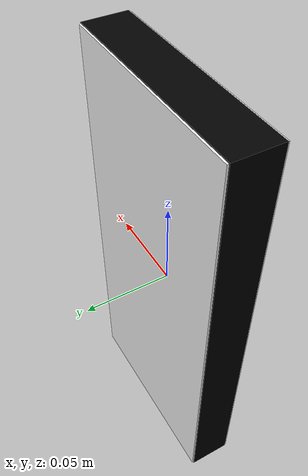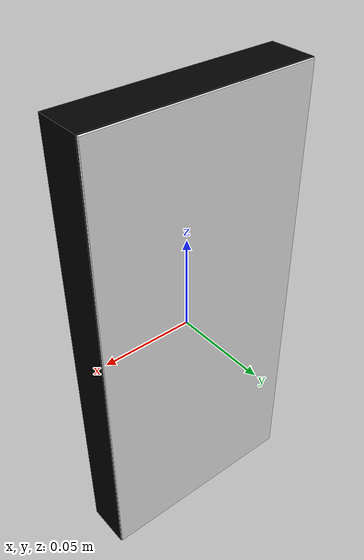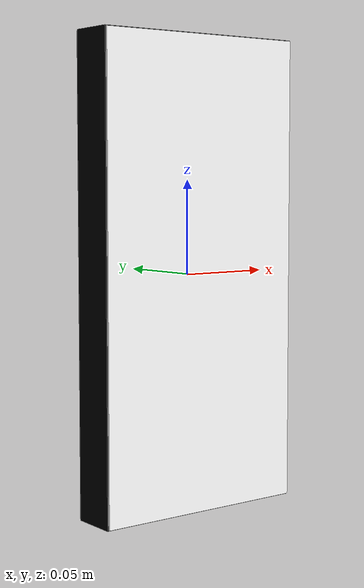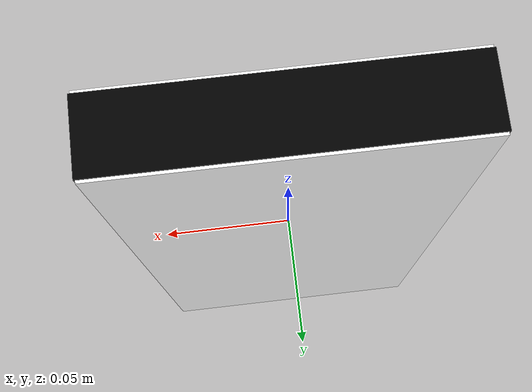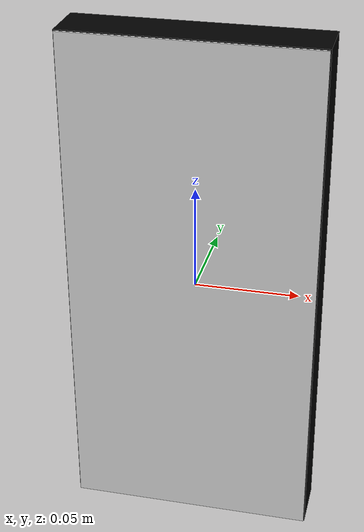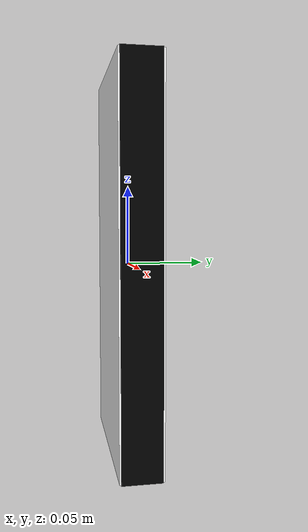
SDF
<?xml version="1.0" ?>
<sdf version="1.6">
  <model name="traffic_intersection">
    <static>true</static>
    <link name="box">
      <pose>0 0 0 0 0 0</pose>
      <collision name="collision">
        <geometry>
          <box>
            <size>0.12 0.025 0.25</size>
          </box>
        </geometry>
      </collision>
            <visual name='visual_base_pure_black'>
        <geometry>
          <box>
            <size>0.12 0.025 0.25</size>
          </box>
        </geometry>
        <material>
          <ambient>0 0 0 1</ambient>
          <diffuse>0 0 0 1</diffuse>
          <specular>0 0 0 1</specular>
          <emissive>0 0 0 1</emissive>
        </material>
      </visual>

      <visual name='visual_sticker_front'>
        <pose>0 -0.013 0 0 0 0</pose>
        <geometry>
          <box>
            <size>0.119 0.001 0.249</size>
          </box>
        </geometry>
        <material>
          <ambient>1 1 1 1</ambient>
          <diffuse>1 1 1 1</diffuse>
          <specular>0.1 0.1 0.1 1</specular>
          <pbr>
            <metal>
              <albedo_map>model://turtlebot3_autorace_2020/traffic_intersection/materials/textures/traffic_intersection.png</albedo_map>
            </metal>
          </pbr>
        </material>
      </visual>

      <visual name='visual_sticker_back'>
        <pose>0 0.013 0 0 0 0</pose>
        <geometry>
          <box>
            <size>0.119 0.001 0.249</size>
          </box>
        </geometry>
        <material>
          <ambient>1 1 1 1</ambient>
          <diffuse>1 1 1 1</diffuse>
          <specular>0.1 0.1 0.1 1</specular>
          <pbr>
            <metal>
              <albedo_map>model://turtlebot3_autorace_2020/traffic_intersection/materials/textures/traffic_intersection.png</albedo_map>
            </metal>
          </pbr>
        </material>
      </visual>
    </link>
  </model>
</sdf>
